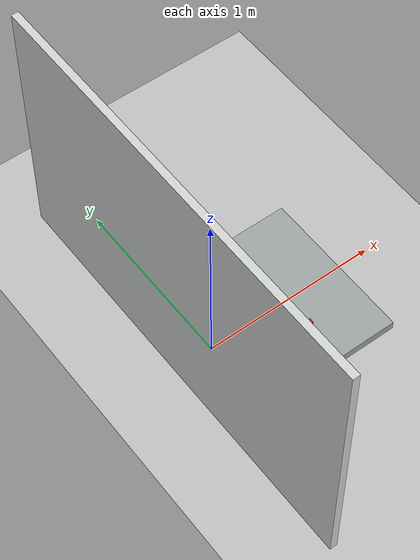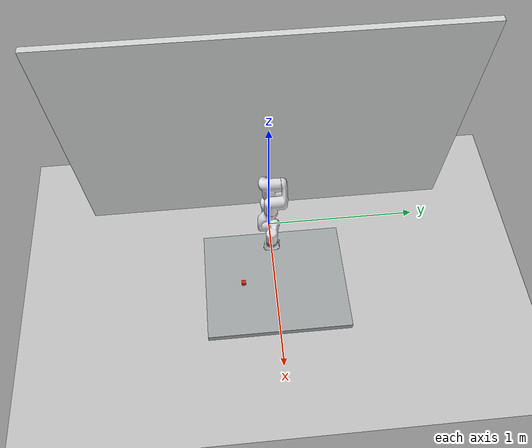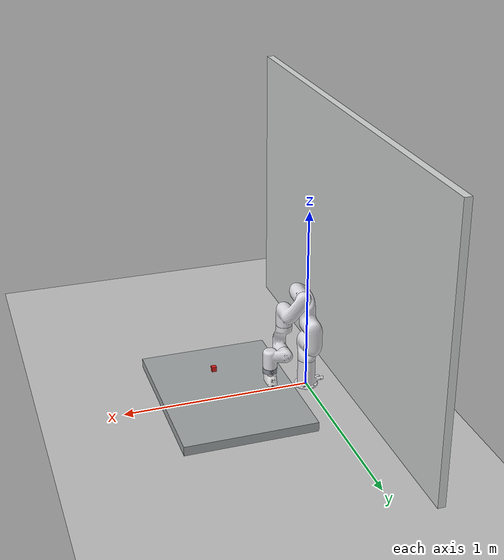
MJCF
<?xml version='1.0' encoding='utf-8'?>
<mujoco model="xarm6_pick_scene">
  <compiler angle="radian" autolimits="true" meshdir="../../../third_party/xarm_ros2/xarm_description/meshes/xarm6/visual" />
  <option timestep="0.002" gravity="0 0 -9.81" integrator="implicitfast" />
  <visual>
    <global azimuth="135" elevation="-20" />
    <headlight ambient="0.35 0.35 0.35" diffuse="0.6 0.6 0.6" specular="0.2 0.2 0.2" />
  </visual>
  <default>
    <joint damping="1.0" armature="0.01" />
    <geom contype="0" conaffinity="0" group="2" />
  </default>
  <asset>
    <material name="robot_white" rgba="0.86 0.86 0.88 1" />
    <material name="robot_silver" rgba="0.55 0.57 0.6 1" />
    <mesh name="link_base_mesh" file="link_base.stl" />
    <mesh name="link1_mesh" file="link1.stl" />
    <mesh name="link2_mesh" file="link2.stl" />
    <mesh name="link3_mesh" file="link3.stl" />
    <mesh name="link4_mesh" file="link4.stl" />
    <mesh name="link5_mesh" file="link5.stl" />
    <mesh name="link6_mesh" file="link6.stl" />
    <material name="menagerie_white" rgba="1 1 1 1" />
    <material name="menagerie_black" rgba="0.149 0.149 0.149 1" />
    <material name="table_material" rgba="0.62 0.64 0.64 1" />
    <material name="object_material" rgba="0.85 0.12 0.10 1" />
    <material name="blue_block_material" rgba="0.05 0.55 0.78 1" />
    <material name="pepper_red_material" rgba="0.82 0.035 0.035 1" />
    <material name="pepper_green_material" rgba="0.08 0.34 0.10 1" />
    <material name="ring_material" rgba="0.92 0.92 0.90 1" />
    <mesh name="xarm_gripper_base_mesh" file="../../gripper/xarm/base_link.stl" />
    <mesh name="left_outer_knuckle_mesh" file="../../gripper/xarm/left_outer_knuckle.stl" />
    <mesh name="left_finger_mesh" file="../../gripper/xarm/left_finger.stl" />
    <mesh name="left_inner_knuckle_mesh" file="../../gripper/xarm/left_inner_knuckle.stl" />
    <mesh name="right_outer_knuckle_mesh" file="../../gripper/xarm/right_outer_knuckle.stl" />
    <mesh name="right_finger_mesh" file="../../gripper/xarm/right_finger.stl" />
    <mesh name="right_inner_knuckle_mesh" file="../../gripper/xarm/right_inner_knuckle.stl" />
  </asset>
  <worldbody>
    <light name="main_light" pos="1 -1 2.5" dir="-0.3 0.3 -1" castshadow="false" />
    <camera name="overview_camera" pos="1.4 -1.4 1.1" xyaxes="0.707 0.707 0 -0.36 0.36 0.86" fovy="50" />
    <geom name="floor" type="plane" size="2 2 0.1" rgba="0.75 0.75 0.75 1" contype="1" conaffinity="1" friction="1 0.01 0.001" />
    <body name="link_base" pos="0 0 0">
      <geom name="link_base_visual" type="mesh" mesh="link_base_mesh" material="robot_white" />
      <body name="link1" pos="0 0 0.267" euler="0 0 0" gravcomp="1">
        <joint name="joint1" type="hinge" axis="0 0 1" limited="true" range="-6.283185307 6.283185307" />
        <inertial pos="0.00022 0.02951 -0.0124" mass="2.3814" fullinertia="0.0058562 0.0050316 0.003536652 -1.79e-05 3.55e-06 -0.000888336" />
        <geom name="link1_visual" type="mesh" mesh="link1_mesh" material="robot_white" />
        <body name="link2" pos="0 0 0" euler="-1.5708 0 0" gravcomp="1">
          <joint name="joint2" type="hinge" axis="0 0 1" limited="true" range="-2.059 2.0944" />
          <inertial pos="0.03881 -0.22783 0.03496" mass="2.2675" fullinertia="0.028315776 0.0058 0.0273447 0.005 0.00066546 -0.0045741" />
          <geom name="link2_visual" type="mesh" mesh="link2_mesh" material="robot_white" />
          <body name="link3" pos="0.0535 -0.2845 0" euler="0 0 0" gravcomp="1">
            <joint name="joint3" type="hinge" axis="0 0 1" limited="true" range="-3.927 0.19198" />
            <inertial pos="0.07041 0.11631 0.0107" mass="1.875" fullinertia="0.0063483 0.00379758 0.00595768 -0.0015397 0.00096858 0.00186567" />
            <geom name="link3_visual" type="mesh" mesh="link3_mesh" material="robot_white" />
            <body name="link4" pos="0.0775 0.3425 0" euler="-1.5708 0 0" gravcomp="1">
              <joint name="joint4" type="hinge" axis="0 0 1" limited="true" range="-6.283185307 6.283185307" />
              <inertial pos="-0.00018 0.01798 -0.02291" mass="1.3192" fullinertia="0.004896 0.00445694 0.00134332 -6.925e-06 -1.418e-05 -0.00023186" />
              <geom name="link4_visual" type="mesh" mesh="link4_mesh" material="robot_white" />
              <body name="link5" pos="0 0 0" euler="1.5708 0 0" gravcomp="1">
                <joint name="joint5" type="hinge" axis="0 0 1" limited="true" range="-1.69297 3.141592654" />
                <inertial pos="0.0651 0.03096 0.00315" mass="1.33854" fullinertia="0.00146378 0.00184192 0.002333524 -0.000450624 0.000284306 0.000130866" />
                <geom name="link5_visual" type="mesh" mesh="link5_mesh" material="robot_white" />
                <body name="link6" pos="0.076 0.097 0" euler="-1.5708 0 0" gravcomp="1">
                  <joint name="joint6" type="hinge" axis="0 0 1" limited="true" range="-6.283185307 6.283185307" />
                  <inertial pos="0 -0.00677 -0.01098" mass="0.17" fullinertia="9.3e-05 5.87e-05 0.000132 -0 -0 -3.6e-06" />
                  <geom name="link6_visual" type="mesh" mesh="link6_mesh" material="robot_silver" />
                  <site name="end_effector_site" pos="0 0 0" size="0.01" rgba="1 0 0 1" />
                  <body name="xarm_gripper_base_link">
                    <inertial pos="-0.00065489 -0.0018497 0.048028" quat="0.997403 -0.0717512 -0.0061836 0.000477479" mass="0.54156" diaginertia="0.000471093 0.000332307 0.000254799" />
                    <geom name="xarm_gripper_base_collision" type="mesh" mesh="xarm_gripper_base_mesh" material="menagerie_white" contype="1" conaffinity="1" group="0" />
                    <site name="tool_center_point" pos="0 0 0.172" size="0.012" rgba="0 1 0 0" />
                    <camera name="wrist_camera" pos="0.07 0.006 0.087" xyaxes="0.05396858831 -0.9984286526 -0.01508698438 -0.9539193421 -0.04708470002 -0.2963459462" fovy="108.7" />
                    <body name="held_red_pepper" pos="0 0 -1">
                      <geom name="held_pepper_lobe_0" type="ellipsoid" pos="0.011 0 0" size="0.016 0.016 0.022" mass="0.004" material="pepper_red_material" contype="1" conaffinity="1" friction="1.3 0.02 0.002" rgba="0.82 0.035 0.035 0" />
                      <geom name="held_pepper_lobe_1" type="ellipsoid" pos="-0.011 0 0" size="0.016 0.016 0.022" mass="0.004" material="pepper_red_material" contype="1" conaffinity="1" friction="1.3 0.02 0.002" rgba="0.82 0.035 0.035 0" />
                      <geom name="held_pepper_lobe_2" type="ellipsoid" pos="0 0.011 0" size="0.016 0.016 0.022" mass="0.004" material="pepper_red_material" contype="1" conaffinity="1" friction="1.3 0.02 0.002" rgba="0.82 0.035 0.035 0" />
                      <geom name="held_pepper_lobe_3" type="ellipsoid" pos="0 -0.011 0" size="0.016 0.016 0.022" mass="0.004" material="pepper_red_material" contype="1" conaffinity="1" friction="1.3 0.02 0.002" rgba="0.82 0.035 0.035 0" />
                      <geom name="held_pepper_stem" type="capsule" pos="0 0 0.026" size="0.005 0.009" mass="0.001" material="pepper_green_material" contype="1" conaffinity="1" friction="1.0 0.01 0.001" rgba="0.08 0.34 0.10 0" />
                    </body>
                    <body name="left_outer_knuckle" pos="0 0.035 0.059098">
                      <inertial pos="0 0.021559 0.015181" quat="0.47789 0.87842 0 0" mass="0.033618" diaginertia="1.9111e-05 1.79089e-05 1.90167e-06" />
                      <joint name="left_driver_joint" type="hinge" axis="1 0 0" range="0 0.85" armature="0.005" frictionloss="1" damping="0.1" solreflimit="0.005 1" />
                      <geom name="left_outer_knuckle_collision" type="mesh" mesh="left_outer_knuckle_mesh" material="menagerie_black" contype="1" conaffinity="1" group="0" />
                      <body name="left_finger" pos="0 0.035465 0.042039">
                        <inertial pos="0 -0.016413 0.029258" quat="0.697634 0.115353 -0.115353 0.697634" mass="0.048304" diaginertia="1.88037e-05 1.7493e-05 3.56792e-06" />
                        <joint name="left_finger_joint" type="hinge" axis="-1 0 0" range="0 0.85" armature="0.1" frictionloss="1" solreflimit="0.005 1" />
                        <geom name="left_finger_visual" type="mesh" mesh="left_finger_mesh" material="menagerie_black" contype="0" conaffinity="0" group="2" />
                        <geom name="left_finger_pad_1" type="box" pos="0 -0.024003 0.032" size="0.015 0.002 0.0095" friction="0.7" solimp="0.95 0.99 0.001" solref="0.004 1" mass="0" priority="1" contype="1" conaffinity="1" group="3" rgba="0.0 0.1 0.7 1" />
                        <geom name="left_finger_pad_2" type="box" pos="0 -0.024003 0.050" size="0.015 0.002 0.0095" friction="0.6" solimp="0.95 0.99 0.001" solref="0.004 1" mass="0" priority="1" contype="1" conaffinity="1" group="3" rgba="0.0 0.5 0.5 1" />
                      </body>
                    </body>
                    <body name="left_inner_knuckle" pos="0 0.02 0.074098">
                      <inertial pos="1.86601e-06 0.0220468 0.0261335" quat="0.664139 -0.242732 0.242713 0.664146" mass="0.0230126" diaginertia="8.34216e-06 6.0949e-06 2.75601e-06" />
                      <joint name="left_inner_knuckle_joint" type="hinge" axis="1 0 0" range="0 0.85" armature="0.1" frictionloss="1" stiffness="0.05" springref="2.62" damping="0.00125" />
                      <geom name="left_inner_knuckle_collision" type="mesh" mesh="left_inner_knuckle_mesh" material="menagerie_black" contype="1" conaffinity="1" group="0" />
                    </body>
                    <body name="right_outer_knuckle" pos="0 -0.035 0.059098">
                      <inertial pos="0 -0.021559 0.015181" quat="0.87842 0.47789 0 0" mass="0.033618" diaginertia="1.9111e-05 1.79089e-05 1.90167e-06" />
                      <joint name="right_driver_joint" type="hinge" axis="-1 0 0" range="0 0.85" armature="0.005" frictionloss="1" damping="0.1" solreflimit="0.005 1" />
                      <geom name="right_outer_knuckle_collision" type="mesh" mesh="right_outer_knuckle_mesh" material="menagerie_black" contype="1" conaffinity="1" group="0" />
                      <body name="right_finger" pos="0 -0.035465 0.042039">
                        <inertial pos="0 0.016413 0.029258" quat="0.697634 -0.115356 0.115356 0.697634" mass="0.048304" diaginertia="1.88038e-05 1.7493e-05 3.56779e-06" />
                        <joint name="right_finger_joint" type="hinge" axis="1 0 0" range="0 0.85" armature="0.1" frictionloss="1" solreflimit="0.005 1" />
                        <geom name="right_finger_visual" type="mesh" mesh="right_finger_mesh" material="menagerie_black" contype="0" conaffinity="0" group="2" />
                        <geom name="right_finger_pad_1" type="box" pos="0 0.024003 0.032" size="0.015 0.002 0.0095" friction="0.7" solimp="0.95 0.99 0.001" solref="0.004 1" mass="0" priority="1" contype="1" conaffinity="1" group="3" rgba="0.0 0.1 0.7 1" />
                        <geom name="right_finger_pad_2" type="box" pos="0 0.024003 0.050" size="0.015 0.002 0.0095" friction="0.6" solimp="0.95 0.99 0.001" solref="0.004 1" mass="0" priority="1" contype="1" conaffinity="1" group="3" rgba="0.0 0.5 0.5 1" />
                      </body>
                    </body>
                    <body name="right_inner_knuckle" pos="0 -0.02 0.074098">
                      <inertial pos="1.866e-06 -0.022047 0.026133" quat="0.66415 0.242702 -0.242721 0.664144" mass="0.023013" diaginertia="8.34209e-06 6.0949e-06 2.75601e-06" />
                      <joint name="right_inner_knuckle_joint" type="hinge" axis="-1 0 0" range="0 0.85" armature="0.1" frictionloss="1" stiffness="0.05" springref="2.62" damping="0.00125" />
                      <geom name="right_inner_knuckle_collision" type="mesh" mesh="right_inner_knuckle_mesh" material="menagerie_black" contype="1" conaffinity="1" group="0" />
                    </body>
                  </body>
                  <geom name="link6_collision" type="ellipsoid" size="0.018 0.040 0.047" mass="0" rgba="0.2 0.8 0.2 0" group="3" contype="1" conaffinity="1" friction="0.8 0.01 0.001" pos="0 0 0.006" />
                </body>
                <geom name="link5_collision" type="capsule" size="0.056" mass="0" rgba="0.2 0.8 0.2 0" group="3" contype="1" conaffinity="1" friction="0.8 0.01 0.001" fromto="0 0 -0.038 0 0 0.028" />
              </body>
              <geom name="link4_collision" type="capsule" size="0.052" mass="0" rgba="0.2 0.8 0.2 0" group="3" contype="1" conaffinity="1" friction="0.8 0.01 0.001" fromto="0 -0.004 -0.068 0 -0.004 0.064" />
            </body>
            <geom name="link3_collision" type="capsule" size="0.068" mass="0" rgba="0.2 0.8 0.2 0" group="3" contype="1" conaffinity="1" friction="0.8 0.01 0.001" fromto="-0.004 0.004 -0.06 -0.004 0.004 0.075" />
          </body>
          <geom name="link2_shaft_collision" type="capsule" size="0.060" mass="0" rgba="0.2 0.8 0.2 0" group="3" contype="1" conaffinity="1" friction="0.8 0.01 0.001" fromto="0 0 -0.15 0 0 0.11" />
          <geom name="link2_upper_collision" type="ellipsoid" size="0.064 0.088 0.070" mass="0" rgba="0.2 0.8 0.2 0" group="3" contype="1" conaffinity="1" friction="0.8 0.01 0.001" pos="0 0.004 0.13" />
          <geom name="link2_lower_collision" type="ellipsoid" size="0.064 0.088 0.065" mass="0" rgba="0.2 0.8 0.2 0" group="3" contype="1" conaffinity="1" friction="0.8 0.01 0.001" pos="0 0.004 -0.16" />
        </body>
        <geom name="link1_collision" type="ellipsoid" size="0.050 0.074 0.096" mass="0" rgba="0.2 0.8 0.2 0" group="3" contype="1" conaffinity="1" friction="0.8 0.01 0.001" pos="0 -0.002 -0.003" />
      </body>
      <geom name="link_base_collision" type="cylinder" size="0.08 0.08" mass="0" rgba="0.2 0.8 0.2 0" group="3" contype="1" conaffinity="1" friction="0.8 0.01 0.001" pos="0 0.01 0.08" />
    </body>
    <geom name="table" type="box" pos="0.45 0 0.025" size="0.35 0.45 0.025" material="table_material" contype="1" conaffinity="1" friction="1.0 0.01 0.001" />
    <body name="object" pos="0.458 -0.205 0.063">
      <freejoint name="object_freejoint" />
      <geom name="object_geom" type="box" size="0.013 0.013 0.013" mass="0.012" material="object_material" contype="1" conaffinity="1" friction="1.2 0.01 0.001" />
    </body>
    <body name="blue_block" pos="0.454 -0.204 0.0685">
      <freejoint name="blue_block_freejoint" />
      <geom name="blue_block_geom" type="box" size="0.0185 0.0185 0.0185" mass="0.024" material="blue_block_material" contype="1" conaffinity="1" friction="1.2 0.01 0.001" rgba="1 1 1 0" />
    </body>
    <body name="small_block" pos="0.462 -0.16 0.063">
      <freejoint name="small_block_freejoint" />
      <geom name="small_block_geom" type="box" size="0.013 0.013 0.013" mass="0.012" material="object_material" contype="1" conaffinity="1" friction="1.2 0.01 0.001" rgba="1 1 1 0" />
    </body>
    <body name="large_block" pos="0.456 -0.194 0.0685">
      <freejoint name="large_block_freejoint" />
      <geom name="large_block_geom" type="box" size="0.0185 0.0185 0.0185" mass="0.024" material="blue_block_material" contype="1" conaffinity="1" friction="1.2 0.01 0.001" rgba="1 1 1 0" />
    </body>
    <body name="red_pepper" pos="0.492 -0.178 0.072">
      <freejoint name="red_pepper_freejoint" />
      <geom name="red_pepper_lobe_0" type="ellipsoid" pos="0.011 0 0" size="0.016 0.016 0.022" mass="0.004" material="pepper_red_material" contype="1" conaffinity="1" friction="1.3 0.02 0.002" rgba="0.82 0.035 0.035 0" />
      <geom name="red_pepper_lobe_1" type="ellipsoid" pos="-0.011 0 0" size="0.016 0.016 0.022" mass="0.004" material="pepper_red_material" contype="1" conaffinity="1" friction="1.3 0.02 0.002" rgba="0.82 0.035 0.035 0" />
      <geom name="red_pepper_lobe_2" type="ellipsoid" pos="0 0.011 0" size="0.016 0.016 0.022" mass="0.004" material="pepper_red_material" contype="1" conaffinity="1" friction="1.3 0.02 0.002" rgba="0.82 0.035 0.035 0" />
      <geom name="red_pepper_lobe_3" type="ellipsoid" pos="0 -0.011 0" size="0.016 0.016 0.022" mass="0.004" material="pepper_red_material" contype="1" conaffinity="1" friction="1.3 0.02 0.002" rgba="0.82 0.035 0.035 0" />
      <geom name="red_pepper_grasp_collision" type="ellipsoid" size="0.022 0.022 0.021" mass="0" material="pepper_red_material" contype="1" conaffinity="1" condim="4" friction="2.0 0.02 0.002" rgba="0.82 0.035 0.035 0" />
      <geom name="red_pepper_stem" type="capsule" pos="0 0 0.026" size="0.005 0.009" mass="0.001" material="pepper_green_material" contype="1" conaffinity="1" friction="1.0 0.01 0.001" rgba="0.08 0.34 0.10 0" />
    </body>
    <body name="ring" pos="0 0 -1">
      <geom name="ring_bottom" type="cylinder" size="0.061 0.002" mass="0.05" material="ring_material" rgba="0.92 0.92 0.90 0" contype="1" conaffinity="1" friction="1.0 0.01 0.001" />
      <geom name="ring_wall_00" type="capsule" fromto="0.058 0 0.012 0.05358501289 0.02219563908 0.012" size="0.005" material="ring_material" contype="1" conaffinity="1" friction="1.0 0.01 0.001" rgba="0.92 0.92 0.90 0" />
      <geom name="ring_wall_01" type="capsule" fromto="0.05358501289 0.02219563908 0.012 0.04101219331 0.04101219331 0.012" size="0.005" material="ring_material" contype="1" conaffinity="1" friction="1.0 0.01 0.001" rgba="0.92 0.92 0.90 0" />
      <geom name="ring_wall_02" type="capsule" fromto="0.04101219331 0.04101219331 0.012 0.02219563908 0.05358501289 0.012" size="0.005" material="ring_material" contype="1" conaffinity="1" friction="1.0 0.01 0.001" rgba="0.92 0.92 0.90 0" />
      <geom name="ring_wall_03" type="capsule" fromto="0.02219563908 0.05358501289 0.012 3.551475718e-18 0.058 0.012" size="0.005" material="ring_material" contype="1" conaffinity="1" friction="1.0 0.01 0.001" rgba="0.92 0.92 0.90 0" />
      <geom name="ring_wall_04" type="capsule" fromto="3.551475718e-18 0.058 0.012 -0.02219563908 0.05358501289 0.012" size="0.005" material="ring_material" contype="1" conaffinity="1" friction="1.0 0.01 0.001" rgba="0.92 0.92 0.90 0" />
      <geom name="ring_wall_05" type="capsule" fromto="-0.02219563908 0.05358501289 0.012 -0.04101219331 0.04101219331 0.012" size="0.005" material="ring_material" contype="1" conaffinity="1" friction="1.0 0.01 0.001" rgba="0.92 0.92 0.90 0" />
      <geom name="ring_wall_06" type="capsule" fromto="-0.04101219331 0.04101219331 0.012 -0.05358501289 0.02219563908 0.012" size="0.005" material="ring_material" contype="1" conaffinity="1" friction="1.0 0.01 0.001" rgba="0.92 0.92 0.90 0" />
      <geom name="ring_wall_07" type="capsule" fromto="-0.05358501289 0.02219563908 0.012 -0.058 7.102951435e-18 0.012" size="0.005" material="ring_material" contype="1" conaffinity="1" friction="1.0 0.01 0.001" rgba="0.92 0.92 0.90 0" />
      <geom name="ring_wall_08" type="capsule" fromto="-0.058 7.102951435e-18 0.012 -0.05358501289 -0.02219563908 0.012" size="0.005" material="ring_material" contype="1" conaffinity="1" friction="1.0 0.01 0.001" rgba="0.92 0.92 0.90 0" />
      <geom name="ring_wall_09" type="capsule" fromto="-0.05358501289 -0.02219563908 0.012 -0.04101219331 -0.04101219331 0.012" size="0.005" material="ring_material" contype="1" conaffinity="1" friction="1.0 0.01 0.001" rgba="0.92 0.92 0.90 0" />
      <geom name="ring_wall_10" type="capsule" fromto="-0.04101219331 -0.04101219331 0.012 -0.02219563908 -0.05358501289 0.012" size="0.005" material="ring_material" contype="1" conaffinity="1" friction="1.0 0.01 0.001" rgba="0.92 0.92 0.90 0" />
      <geom name="ring_wall_11" type="capsule" fromto="-0.02219563908 -0.05358501289 0.012 -1.065442715e-17 -0.058 0.012" size="0.005" material="ring_material" contype="1" conaffinity="1" friction="1.0 0.01 0.001" rgba="0.92 0.92 0.90 0" />
      <geom name="ring_wall_12" type="capsule" fromto="-1.065442715e-17 -0.058 0.012 0.02219563908 -0.05358501289 0.012" size="0.005" material="ring_material" contype="1" conaffinity="1" friction="1.0 0.01 0.001" rgba="0.92 0.92 0.90 0" />
      <geom name="ring_wall_13" type="capsule" fromto="0.02219563908 -0.05358501289 0.012 0.04101219331 -0.04101219331 0.012" size="0.005" material="ring_material" contype="1" conaffinity="1" friction="1.0 0.01 0.001" rgba="0.92 0.92 0.90 0" />
      <geom name="ring_wall_14" type="capsule" fromto="0.04101219331 -0.04101219331 0.012 0.05358501289 -0.02219563908 0.012" size="0.005" material="ring_material" contype="1" conaffinity="1" friction="1.0 0.01 0.001" rgba="0.92 0.92 0.90 0" />
      <geom name="ring_wall_15" type="capsule" fromto="0.05358501289 -0.02219563908 0.012 0.058 -1.420590287e-17 0.012" size="0.005" material="ring_material" contype="1" conaffinity="1" friction="1.0 0.01 0.001" rgba="0.92 0.92 0.90 0" />
    </body>
    <geom name="camera_backdrop" type="box" pos="-0.20 0 0.75" size="0.02 1.20 0.75" rgba="0.82 0.83 0.83 1" contype="0" conaffinity="0" />
    <camera name="base_camera" pos="1.476 -0.389 0.516" xyaxes="0.1994707007 0.9794632715 0.02937923446 -0.3523094541 0.04370748073 0.9348623988" fovy="29.2" />
  </worldbody>
  <actuator>
    <position name="joint1_actuator" joint="joint1" kp="120" ctrlrange="-6.283185307 6.283185307" forcelimited="true" forcerange="-50 50" />
    <position name="joint2_actuator" joint="joint2" kp="120" ctrlrange="-2.059 2.0944" forcelimited="true" forcerange="-50 50" />
    <position name="joint3_actuator" joint="joint3" kp="100" ctrlrange="-3.927 0.19198" forcelimited="true" forcerange="-32 32" />
    <position name="joint4_actuator" joint="joint4" kp="70" ctrlrange="-6.283185307 6.283185307" forcelimited="true" forcerange="-32 32" />
    <position name="joint5_actuator" joint="joint5" kp="50" ctrlrange="-1.69297 3.141592654" forcelimited="true" forcerange="-32 32" />
    <position name="joint6_actuator" joint="joint6" kp="30" ctrlrange="-6.283185307 6.283185307" forcelimited="true" forcerange="-20 20" />
    <general name="gripper_actuator" tendon="split" biastype="affine" forcerange="-50 50" ctrlrange="0 255" gainprm="0.333" biasprm="0 -100 -10" />
  </actuator>
  <keyframe>
    <key name="home" qpos="0 -0.6 -1.2 0 1.8 0 0.005 0.005 0.005 0.005 0.005 0.005 0.458 -0.205 0.063 1 0 0 0 0.45 0 -1 1 0 0 0 0.43 -0.1 -1 1 0 0 0 0.48 0.1 -1 1 0 0 0 0.45 0 -1 1 0 0 0" ctrl="0 -0.6 -1.2 0 1.8 0 1.501501502" />
  </keyframe>
  <tendon>
    <fixed name="split">
      <joint joint="right_driver_joint" coef="0.5" />
      <joint joint="left_driver_joint" coef="0.5" />
    </fixed>
  </tendon>
  <equality>
    <connect name="right_finger_connect" anchor="0 0.015 0.015" body1="right_finger" body2="right_inner_knuckle" solref="0.005 1" />
    <connect name="left_finger_connect" anchor="0 -0.015 0.015" body1="left_finger" body2="left_inner_knuckle" solref="0.005 1" />
    <joint name="driver_symmetry" joint1="left_driver_joint" joint2="right_driver_joint" polycoef="0 1 0 0 0" solref="0.005 1" />
  </equality>
  <contact>
    <exclude name="menagerie_exclude_right_inner_knuckle_right_outer_knuckle" body1="right_inner_knuckle" body2="right_outer_knuckle" />
    <exclude name="menagerie_exclude_right_inner_knuckle_right_finger" body1="right_inner_knuckle" body2="right_finger" />
    <exclude name="menagerie_exclude_left_inner_knuckle_left_outer_knuckle" body1="left_inner_knuckle" body2="left_outer_knuckle" />
    <exclude name="menagerie_exclude_left_inner_knuckle_left_finger" body1="left_inner_knuckle" body2="left_finger" />
    <exclude name="menagerie_exclude_left_inner_knuckle_xarm_gripper_base_link" body1="left_inner_knuckle" body2="xarm_gripper_base_link" />
    <exclude name="menagerie_exclude_right_inner_knuckle_xarm_gripper_base_link" body1="right_inner_knuckle" body2="xarm_gripper_base_link" />
    <exclude name="menagerie_exclude_left_outer_knuckle_xarm_gripper_base_link" body1="left_outer_knuckle" body2="xarm_gripper_base_link" />
    <exclude name="menagerie_exclude_right_outer_knuckle_xarm_gripper_base_link" body1="right_outer_knuckle" body2="xarm_gripper_base_link" />
    <exclude name="exclude_link_base_link1" body1="link_base" body2="link1" />
    <exclude name="exclude_link1_link2" body1="link1" body2="link2" />
    <exclude name="exclude_link2_link3" body1="link2" body2="link3" />
    <exclude name="exclude_link3_link4" body1="link3" body2="link4" />
    <exclude name="exclude_link4_link5" body1="link4" body2="link5" />
    <exclude name="exclude_link5_link6" body1="link5" body2="link6" />
    <exclude name="exclude_link4_link6" body1="link4" body2="link6" />
    <exclude name="exclude_link6_xarm_gripper_base_link" body1="link6" body2="xarm_gripper_base_link" />
    <exclude name="exclude_link4_xarm_gripper_base_link" body1="link4" body2="xarm_gripper_base_link" />
    <exclude name="exclude_link5_xarm_gripper_base_link" body1="link5" body2="xarm_gripper_base_link" />
  </contact>
</mujoco>
